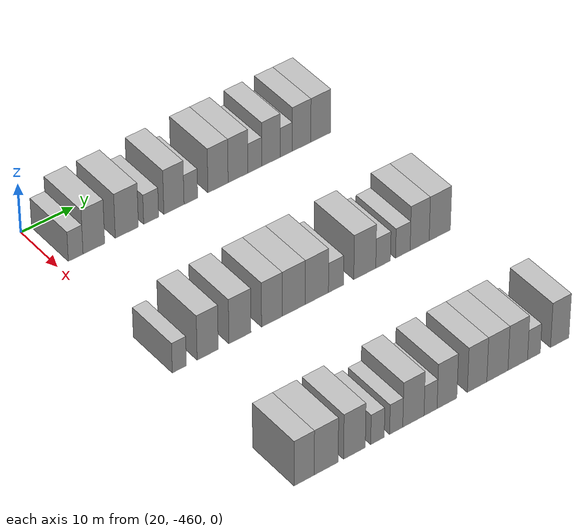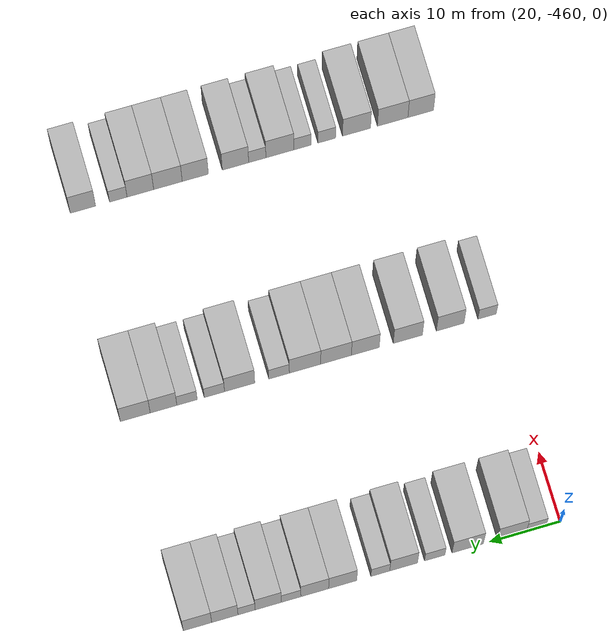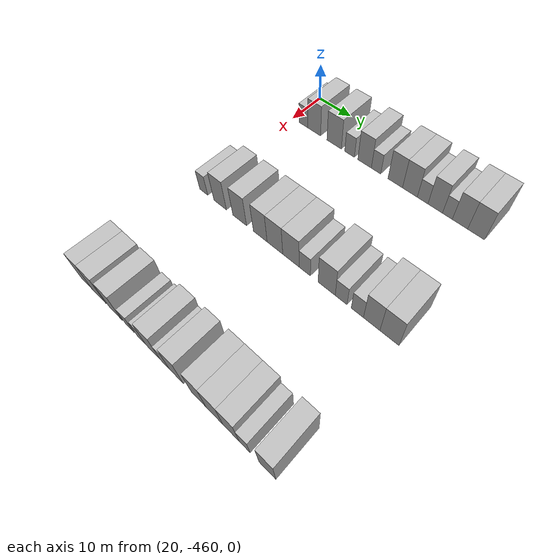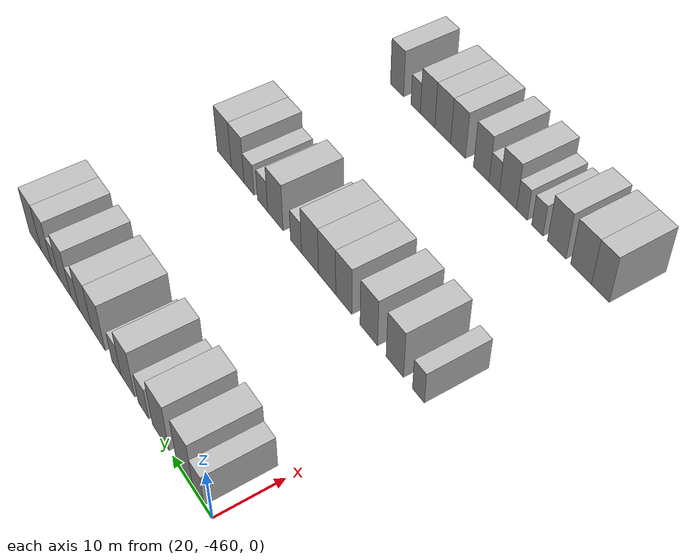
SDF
<sdf version="1.6">
 <world name="default">
  <model name="building_1">
   <static>1</static>
   <pose>25.0000 -456.6130 0 0.000000 0.000000 0.000000</pose>
   <link name="link">
    <pose>0 0 3.00 0 0 0</pose>
    <collision name="collision"><geometry><box><size>10.0000 2.7740 6.0000</size></box></geometry></collision>
    <visual name="visual">
     <cast_shadows>0</cast_shadows>
     <geometry><box><size>10.0000 2.7740 6.0000</size></box></geometry>
     <material>
      <script>
       <uri>model://HANNAS_wall/materials/scripts</uri>
       <uri>model://HANNAS_wall/materials/textures</uri>
       <name>vrc/HANNAS_wall</name>
      </script>
     </material>
    </visual>
   </link>
  </model>
  <model name="building_2">
   <static>1</static>
   <pose>25.0000 -453.1696 0 0.000000 0.000000 0.000000</pose>
   <link name="link">
    <pose>0 0 4.50 0 0 0</pose>
    <collision name="collision"><geometry><box><size>10.0000 4.1128 9.0000</size></box></geometry></collision>
    <visual name="visual">
     <cast_shadows>0</cast_shadows>
     <geometry><box><size>10.0000 4.1128 9.0000</size></box></geometry>
     <material>
      <script>
       <uri>model://HANNAS_wall/materials/scripts</uri>
       <uri>model://HANNAS_wall/materials/textures</uri>
       <name>vrc/HANNAS_wall</name>
      </script>
     </material>
    </visual>
   </link>
  </model>
  <model name="building_3">
   <static>1</static>
   <pose>25.0000 -446.9016 0 0.000000 0.000000 0.000000</pose>
   <link name="link">
    <pose>0 0 4.50 0 0 0</pose>
    <collision name="collision"><geometry><box><size>10.0000 4.4232 9.0000</size></box></geometry></collision>
    <visual name="visual">
     <cast_shadows>0</cast_shadows>
     <geometry><box><size>10.0000 4.4232 9.0000</size></box></geometry>
     <material>
      <script>
       <uri>model://HANNAS_wall/materials/scripts</uri>
       <uri>model://HANNAS_wall/materials/textures</uri>
       <name>vrc/HANNAS_wall</name>
      </script>
     </material>
    </visual>
   </link>
  </model>
  <model name="building_4">
   <static>1</static>
   <pose>25.0000 -442.2487 0 0.000000 0.000000 0.000000</pose>
   <link name="link">
    <pose>0 0 3.00 0 0 0</pose>
    <collision name="collision"><geometry><box><size>10.0000 2.8826 6.0000</size></box></geometry></collision>
    <visual name="visual">
     <cast_shadows>0</cast_shadows>
     <geometry><box><size>10.0000 2.8826 6.0000</size></box></geometry>
     <material>
      <script>
       <uri>model://HANNAS_wall/materials/scripts</uri>
       <uri>model://HANNAS_wall/materials/textures</uri>
       <name>vrc/HANNAS_wall</name>
      </script>
     </material>
    </visual>
   </link>
  </model>
  <model name="building_5">
   <static>1</static>
   <pose>25.0000 -437.8552 0 0.000000 0.000000 0.000000</pose>
   <link name="link">
    <pose>0 0 4.50 0 0 0</pose>
    <collision name="collision"><geometry><box><size>10.0000 3.9045 9.0000</size></box></geometry></collision>
    <visual name="visual">
     <cast_shadows>0</cast_shadows>
     <geometry><box><size>10.0000 3.9045 9.0000</size></box></geometry>
     <material>
      <script>
       <uri>model://HANNAS_wall/materials/scripts</uri>
       <uri>model://HANNAS_wall/materials/textures</uri>
       <name>vrc/HANNAS_wall</name>
      </script>
     </material>
    </visual>
   </link>
  </model>
  <model name="building_6">
   <static>1</static>
   <pose>25.0000 -434.5747 0 0.000000 0.000000 0.000000</pose>
   <link name="link">
    <pose>0 0 3.00 0 0 0</pose>
    <collision name="collision"><geometry><box><size>10.0000 2.6566 6.0000</size></box></geometry></collision>
    <visual name="visual">
     <cast_shadows>0</cast_shadows>
     <geometry><box><size>10.0000 2.6566 6.0000</size></box></geometry>
     <material>
      <script>
       <uri>model://HANNAS_wall/materials/scripts</uri>
       <uri>model://HANNAS_wall/materials/textures</uri>
       <name>vrc/HANNAS_wall</name>
      </script>
     </material>
    </visual>
   </link>
  </model>
  <model name="building_7">
   <static>1</static>
   <pose>25.0000 -429.2692 0 0.000000 0.000000 0.000000</pose>
   <link name="link">
    <pose>0 0 4.50 0 0 0</pose>
    <collision name="collision"><geometry><box><size>10.0000 3.9545 9.0000</size></box></geometry></collision>
    <visual name="visual">
     <cast_shadows>0</cast_shadows>
     <geometry><box><size>10.0000 3.9545 9.0000</size></box></geometry>
     <material>
      <script>
       <uri>model://HANNAS_wall/materials/scripts</uri>
       <uri>model://HANNAS_wall/materials/textures</uri>
       <name>vrc/HANNAS_wall</name>
      </script>
     </material>
    </visual>
   </link>
  </model>
  <model name="building_8">
   <static>1</static>
   <pose>25.0000 -425.3371 0 0.000000 0.000000 0.000000</pose>
   <link name="link">
    <pose>0 0 4.50 0 0 0</pose>
    <collision name="collision"><geometry><box><size>10.0000 3.9096 9.0000</size></box></geometry></collision>
    <visual name="visual">
     <cast_shadows>0</cast_shadows>
     <geometry><box><size>10.0000 3.9096 9.0000</size></box></geometry>
     <material>
      <script>
       <uri>model://HANNAS_wall/materials/scripts</uri>
       <uri>model://HANNAS_wall/materials/textures</uri>
       <name>vrc/HANNAS_wall</name>
      </script>
     </material>
    </visual>
   </link>
  </model>
  <model name="building_9">
   <static>1</static>
   <pose>25.0000 -422.0106 0 0.000000 0.000000 0.000000</pose>
   <link name="link">
    <pose>0 0 3.00 0 0 0</pose>
    <collision name="collision"><geometry><box><size>10.0000 2.7435 6.0000</size></box></geometry></collision>
    <visual name="visual">
     <cast_shadows>0</cast_shadows>
     <geometry><box><size>10.0000 2.7435 6.0000</size></box></geometry>
     <material>
      <script>
       <uri>model://HANNAS_wall/materials/scripts</uri>
       <uri>model://HANNAS_wall/materials/textures</uri>
       <name>vrc/HANNAS_wall</name>
      </script>
     </material>
    </visual>
   </link>
  </model>
  <model name="building_10">
   <static>1</static>
   <pose>25.0000 -418.7983 0 0.000000 0.000000 0.000000</pose>
   <link name="link">
    <pose>0 0 4.50 0 0 0</pose>
    <collision name="collision"><geometry><box><size>10.0000 3.6812 9.0000</size></box></geometry></collision>
    <visual name="visual">
     <cast_shadows>0</cast_shadows>
     <geometry><box><size>10.0000 3.6812 9.0000</size></box></geometry>
     <material>
      <script>
       <uri>model://HANNAS_wall/materials/scripts</uri>
       <uri>model://HANNAS_wall/materials/textures</uri>
       <name>vrc/HANNAS_wall</name>
      </script>
     </material>
    </visual>
   </link>
  </model>
  <model name="building_11">
   <static>1</static>
   <pose>25.0000 -415.7499 0 0.000000 0.000000 0.000000</pose>
   <link name="link">
    <pose>0 0 3.00 0 0 0</pose>
    <collision name="collision"><geometry><box><size>10.0000 2.4156 6.0000</size></box></geometry></collision>
    <visual name="visual">
     <cast_shadows>0</cast_shadows>
     <geometry><box><size>10.0000 2.4156 6.0000</size></box></geometry>
     <material>
      <script>
       <uri>model://HANNAS_wall/materials/scripts</uri>
       <uri>model://HANNAS_wall/materials/textures</uri>
       <name>vrc/HANNAS_wall</name>
      </script>
     </material>
    </visual>
   </link>
  </model>
  <model name="building_12">
   <static>1</static>
   <pose>25.0000 -412.6947 0 0.000000 0.000000 0.000000</pose>
   <link name="link">
    <pose>0 0 4.50 0 0 0</pose>
    <collision name="collision"><geometry><box><size>10.0000 3.6948 9.0000</size></box></geometry></collision>
    <visual name="visual">
     <cast_shadows>0</cast_shadows>
     <geometry><box><size>10.0000 3.6948 9.0000</size></box></geometry>
     <material>
      <script>
       <uri>model://HANNAS_wall/materials/scripts</uri>
       <uri>model://HANNAS_wall/materials/textures</uri>
       <name>vrc/HANNAS_wall</name>
      </script>
     </material>
    </visual>
   </link>
  </model>
  <model name="building_13">
   <static>1</static>
   <pose>25.0000 -408.8557 0 0.000000 0.000000 0.000000</pose>
   <link name="link">
    <pose>0 0 4.50 0 0 0</pose>
    <collision name="collision"><geometry><box><size>10.0000 3.9831 9.0000</size></box></geometry></collision>
    <visual name="visual">
     <cast_shadows>0</cast_shadows>
     <geometry><box><size>10.0000 3.9831 9.0000</size></box></geometry>
     <material>
      <script>
       <uri>model://HANNAS_wall/materials/scripts</uri>
       <uri>model://HANNAS_wall/materials/textures</uri>
       <name>vrc/HANNAS_wall</name>
      </script>
     </material>
    </visual>
   </link>
  </model>
  <model name="building_223">
   <static>1</static>
   <pose>55.0000 -458.6962 0 0.000000 0.000000 0.000000</pose>
   <link name="link">
    <pose>0 0 3.00 0 0 0</pose>
    <collision name="collision"><geometry><box><size>10.0000 2.6076 6.0000</size></box></geometry></collision>
    <visual name="visual">
     <cast_shadows>0</cast_shadows>
     <geometry><box><size>10.0000 2.6076 6.0000</size></box></geometry>
     <material>
      <script>
       <uri>model://HANNAS_wall/materials/scripts</uri>
       <uri>model://HANNAS_wall/materials/textures</uri>
       <name>vrc/HANNAS_wall</name>
      </script>
     </material>
    </visual>
   </link>
  </model>
  <model name="building_224">
   <static>1</static>
   <pose>55.0000 -453.4210 0 0.000000 0.000000 0.000000</pose>
   <link name="link">
    <pose>0 0 4.50 0 0 0</pose>
    <collision name="collision"><geometry><box><size>10.0000 3.9427 9.0000</size></box></geometry></collision>
    <visual name="visual">
     <cast_shadows>0</cast_shadows>
     <geometry><box><size>10.0000 3.9427 9.0000</size></box></geometry>
     <material>
      <script>
       <uri>model://HANNAS_wall/materials/scripts</uri>
       <uri>model://HANNAS_wall/materials/textures</uri>
       <name>vrc/HANNAS_wall</name>
      </script>
     </material>
    </visual>
   </link>
  </model>
  <model name="building_225">
   <static>1</static>
   <pose>55.0000 -447.3735 0 0.000000 0.000000 0.000000</pose>
   <link name="link">
    <pose>0 0 4.50 0 0 0</pose>
    <collision name="collision"><geometry><box><size>10.0000 4.1523 9.0000</size></box></geometry></collision>
    <visual name="visual">
     <cast_shadows>0</cast_shadows>
     <geometry><box><size>10.0000 4.1523 9.0000</size></box></geometry>
     <material>
      <script>
       <uri>model://HANNAS_wall/materials/scripts</uri>
       <uri>model://HANNAS_wall/materials/textures</uri>
       <name>vrc/HANNAS_wall</name>
      </script>
     </material>
    </visual>
   </link>
  </model>
  <model name="building_226">
   <static>1</static>
   <pose>55.0000 -441.3153 0 0.000000 0.000000 0.000000</pose>
   <link name="link">
    <pose>0 0 4.50 0 0 0</pose>
    <collision name="collision"><geometry><box><size>10.0000 3.9642 9.0000</size></box></geometry></collision>
    <visual name="visual">
     <cast_shadows>0</cast_shadows>
     <geometry><box><size>10.0000 3.9642 9.0000</size></box></geometry>
     <material>
      <script>
       <uri>model://HANNAS_wall/materials/scripts</uri>
       <uri>model://HANNAS_wall/materials/textures</uri>
       <name>vrc/HANNAS_wall</name>
      </script>
     </material>
    </visual>
   </link>
  </model>
  <model name="building_227">
   <static>1</static>
   <pose>55.0000 -437.1441 0 0.000000 0.000000 0.000000</pose>
   <link name="link">
    <pose>0 0 4.50 0 0 0</pose>
    <collision name="collision"><geometry><box><size>10.0000 4.3783 9.0000</size></box></geometry></collision>
    <visual name="visual">
     <cast_shadows>0</cast_shadows>
     <geometry><box><size>10.0000 4.3783 9.0000</size></box></geometry>
     <material>
      <script>
       <uri>model://HANNAS_wall/materials/scripts</uri>
       <uri>model://HANNAS_wall/materials/textures</uri>
       <name>vrc/HANNAS_wall</name>
      </script>
     </material>
    </visual>
   </link>
  </model>
  <model name="building_228">
   <static>1</static>
   <pose>55.0000 -432.7282 0 0.000000 0.000000 0.000000</pose>
   <link name="link">
    <pose>0 0 4.50 0 0 0</pose>
    <collision name="collision"><geometry><box><size>10.0000 4.4536 9.0000</size></box></geometry></collision>
    <visual name="visual">
     <cast_shadows>0</cast_shadows>
     <geometry><box><size>10.0000 4.4536 9.0000</size></box></geometry>
     <material>
      <script>
       <uri>model://HANNAS_wall/materials/scripts</uri>
       <uri>model://HANNAS_wall/materials/textures</uri>
       <name>vrc/HANNAS_wall</name>
      </script>
     </material>
    </visual>
   </link>
  </model>
  <model name="building_229">
   <static>1</static>
   <pose>55.0000 -429.0432 0 0.000000 0.000000 0.000000</pose>
   <link name="link">
    <pose>0 0 3.00 0 0 0</pose>
    <collision name="collision"><geometry><box><size>10.0000 2.9164 6.0000</size></box></geometry></collision>
    <visual name="visual">
     <cast_shadows>0</cast_shadows>
     <geometry><box><size>10.0000 2.9164 6.0000</size></box></geometry>
     <material>
      <script>
       <uri>model://HANNAS_wall/materials/scripts</uri>
       <uri>model://HANNAS_wall/materials/textures</uri>
       <name>vrc/HANNAS_wall</name>
      </script>
     </material>
    </visual>
   </link>
  </model>
  <model name="building_230">
   <static>1</static>
   <pose>55.0000 -423.4375 0 0.000000 0.000000 0.000000</pose>
   <link name="link">
    <pose>0 0 4.50 0 0 0</pose>
    <collision name="collision"><geometry><box><size>10.0000 4.2949 9.0000</size></box></geometry></collision>
    <visual name="visual">
     <cast_shadows>0</cast_shadows>
     <geometry><box><size>10.0000 4.2949 9.0000</size></box></geometry>
     <material>
      <script>
       <uri>model://HANNAS_wall/materials/scripts</uri>
       <uri>model://HANNAS_wall/materials/textures</uri>
       <name>vrc/HANNAS_wall</name>
      </script>
     </material>
    </visual>
   </link>
  </model>
  <model name="building_231">
   <static>1</static>
   <pose>55.0000 -419.8538 0 0.000000 0.000000 0.000000</pose>
   <link name="link">
    <pose>0 0 3.00 0 0 0</pose>
    <collision name="collision"><geometry><box><size>10.0000 2.8726 6.0000</size></box></geometry></collision>
    <visual name="visual">
     <cast_shadows>0</cast_shadows>
     <geometry><box><size>10.0000 2.8726 6.0000</size></box></geometry>
     <material>
      <script>
       <uri>model://HANNAS_wall/materials/scripts</uri>
       <uri>model://HANNAS_wall/materials/textures</uri>
       <name>vrc/HANNAS_wall</name>
      </script>
     </material>
    </visual>
   </link>
  </model>
  <model name="building_232">
   <static>1</static>
   <pose>55.0000 -415.9744 0 0.000000 0.000000 0.000000</pose>
   <link name="link">
    <pose>0 0 3.00 0 0 0</pose>
    <collision name="collision"><geometry><box><size>10.0000 2.8861 6.0000</size></box></geometry></collision>
    <visual name="visual">
     <cast_shadows>0</cast_shadows>
     <geometry><box><size>10.0000 2.8861 6.0000</size></box></geometry>
     <material>
      <script>
       <uri>model://HANNAS_wall/materials/scripts</uri>
       <uri>model://HANNAS_wall/materials/textures</uri>
       <name>vrc/HANNAS_wall</name>
      </script>
     </material>
    </visual>
   </link>
  </model>
  <model name="building_233">
   <static>1</static>
   <pose>55.0000 -412.6437 0 0.000000 0.000000 0.000000</pose>
   <link name="link">
    <pose>0 0 4.50 0 0 0</pose>
    <collision name="collision"><geometry><box><size>10.0000 3.7753 9.0000</size></box></geometry></collision>
    <visual name="visual">
     <cast_shadows>0</cast_shadows>
     <geometry><box><size>10.0000 3.7753 9.0000</size></box></geometry>
     <material>
      <script>
       <uri>model://HANNAS_wall/materials/scripts</uri>
       <uri>model://HANNAS_wall/materials/textures</uri>
       <name>vrc/HANNAS_wall</name>
      </script>
     </material>
    </visual>
   </link>
  </model>
  <model name="building_234">
   <static>1</static>
   <pose>55.0000 -408.6398 0 0.000000 0.000000 0.000000</pose>
   <link name="link">
    <pose>0 0 4.50 0 0 0</pose>
    <collision name="collision"><geometry><box><size>10.0000 4.2324 9.0000</size></box></geometry></collision>
    <visual name="visual">
     <cast_shadows>0</cast_shadows>
     <geometry><box><size>10.0000 4.2324 9.0000</size></box></geometry>
     <material>
      <script>
       <uri>model://HANNAS_wall/materials/scripts</uri>
       <uri>model://HANNAS_wall/materials/textures</uri>
       <name>vrc/HANNAS_wall</name>
      </script>
     </material>
    </visual>
   </link>
  </model>
  <model name="building_438">
   <static>1</static>
   <pose>85.0000 -458.1568 0 0.000000 0.000000 0.000000</pose>
   <link name="link">
    <pose>0 0 4.50 0 0 0</pose>
    <collision name="collision"><geometry><box><size>10.0000 3.6864 9.0000</size></box></geometry></collision>
    <visual name="visual">
     <cast_shadows>0</cast_shadows>
     <geometry><box><size>10.0000 3.6864 9.0000</size></box></geometry>
     <material>
      <script>
       <uri>model://HANNAS_wall/materials/scripts</uri>
       <uri>model://HANNAS_wall/materials/textures</uri>
       <name>vrc/HANNAS_wall</name>
      </script>
     </material>
    </visual>
   </link>
  </model>
  <model name="building_439">
   <static>1</static>
   <pose>85.0000 -454.1171 0 0.000000 0.000000 0.000000</pose>
   <link name="link">
    <pose>0 0 4.50 0 0 0</pose>
    <collision name="collision"><geometry><box><size>10.0000 4.3930 9.0000</size></box></geometry></collision>
    <visual name="visual">
     <cast_shadows>0</cast_shadows>
     <geometry><box><size>10.0000 4.3930 9.0000</size></box></geometry>
     <material>
      <script>
       <uri>model://HANNAS_wall/materials/scripts</uri>
       <uri>model://HANNAS_wall/materials/textures</uri>
       <name>vrc/HANNAS_wall</name>
      </script>
     </material>
    </visual>
   </link>
  </model>
  <model name="building_440">
   <static>1</static>
   <pose>85.0000 -448.9026 0 0.000000 0.000000 0.000000</pose>
   <link name="link">
    <pose>0 0 4.50 0 0 0</pose>
    <collision name="collision"><geometry><box><size>10.0000 4.0360 9.0000</size></box></geometry></collision>
    <visual name="visual">
     <cast_shadows>0</cast_shadows>
     <geometry><box><size>10.0000 4.0360 9.0000</size></box></geometry>
     <material>
      <script>
       <uri>model://HANNAS_wall/materials/scripts</uri>
       <uri>model://HANNAS_wall/materials/textures</uri>
       <name>vrc/HANNAS_wall</name>
      </script>
     </material>
    </visual>
   </link>
  </model>
  <model name="building_441">
   <static>1</static>
   <pose>85.0000 -444.6174 0 0.000000 0.000000 0.000000</pose>
   <link name="link">
    <pose>0 0 3.00 0 0 0</pose>
    <collision name="collision"><geometry><box><size>10.0000 2.5345 6.0000</size></box></geometry></collision>
    <visual name="visual">
     <cast_shadows>0</cast_shadows>
     <geometry><box><size>10.0000 2.5345 6.0000</size></box></geometry>
     <material>
      <script>
       <uri>model://HANNAS_wall/materials/scripts</uri>
       <uri>model://HANNAS_wall/materials/textures</uri>
       <name>vrc/HANNAS_wall</name>
      </script>
     </material>
    </visual>
   </link>
  </model>
  <model name="building_442">
   <static>1</static>
   <pose>85.0000 -441.1143 0 0.000000 0.000000 0.000000</pose>
   <link name="link">
    <pose>0 0 3.00 0 0 0</pose>
    <collision name="collision"><geometry><box><size>10.0000 2.4717 6.0000</size></box></geometry></collision>
    <visual name="visual">
     <cast_shadows>0</cast_shadows>
     <geometry><box><size>10.0000 2.4717 6.0000</size></box></geometry>
     <material>
      <script>
       <uri>model://HANNAS_wall/materials/scripts</uri>
       <uri>model://HANNAS_wall/materials/textures</uri>
       <name>vrc/HANNAS_wall</name>
      </script>
     </material>
    </visual>
   </link>
  </model>
  <model name="building_443">
   <static>1</static>
   <pose>85.0000 -437.8749 0 0.000000 0.000000 0.000000</pose>
   <link name="link">
    <pose>0 0 4.50 0 0 0</pose>
    <collision name="collision"><geometry><box><size>10.0000 4.0071 9.0000</size></box></geometry></collision>
    <visual name="visual">
     <cast_shadows>0</cast_shadows>
     <geometry><box><size>10.0000 4.0071 9.0000</size></box></geometry>
     <material>
      <script>
       <uri>model://HANNAS_wall/materials/scripts</uri>
       <uri>model://HANNAS_wall/materials/textures</uri>
       <name>vrc/HANNAS_wall</name>
      </script>
     </material>
    </visual>
   </link>
  </model>
  <model name="building_444">
   <static>1</static>
   <pose>85.0000 -434.6320 0 0.000000 0.000000 0.000000</pose>
   <link name="link">
    <pose>0 0 3.00 0 0 0</pose>
    <collision name="collision"><geometry><box><size>10.0000 2.4787 6.0000</size></box></geometry></collision>
    <visual name="visual">
     <cast_shadows>0</cast_shadows>
     <geometry><box><size>10.0000 2.4787 6.0000</size></box></geometry>
     <material>
      <script>
       <uri>model://HANNAS_wall/materials/scripts</uri>
       <uri>model://HANNAS_wall/materials/textures</uri>
       <name>vrc/HANNAS_wall</name>
      </script>
     </material>
    </visual>
   </link>
  </model>
  <model name="building_445">
   <static>1</static>
   <pose>85.0000 -431.5022 0 0.000000 0.000000 0.000000</pose>
   <link name="link">
    <pose>0 0 4.50 0 0 0</pose>
    <collision name="collision"><geometry><box><size>10.0000 3.7809 9.0000</size></box></geometry></collision>
    <visual name="visual">
     <cast_shadows>0</cast_shadows>
     <geometry><box><size>10.0000 3.7809 9.0000</size></box></geometry>
     <material>
      <script>
       <uri>model://HANNAS_wall/materials/scripts</uri>
       <uri>model://HANNAS_wall/materials/textures</uri>
       <name>vrc/HANNAS_wall</name>
      </script>
     </material>
    </visual>
   </link>
  </model>
  <model name="building_446">
   <static>1</static>
   <pose>85.0000 -425.7390 0 0.000000 0.000000 0.000000</pose>
   <link name="link">
    <pose>0 0 4.50 0 0 0</pose>
    <collision name="collision"><geometry><box><size>10.0000 3.7456 9.0000</size></box></geometry></collision>
    <visual name="visual">
     <cast_shadows>0</cast_shadows>
     <geometry><box><size>10.0000 3.7456 9.0000</size></box></geometry>
     <material>
      <script>
       <uri>model://HANNAS_wall/materials/scripts</uri>
       <uri>model://HANNAS_wall/materials/textures</uri>
       <name>vrc/HANNAS_wall</name>
      </script>
     </material>
    </visual>
   </link>
  </model>
  <model name="building_447">
   <static>1</static>
   <pose>85.0000 -421.8213 0 0.000000 0.000000 0.000000</pose>
   <link name="link">
    <pose>0 0 4.50 0 0 0</pose>
    <collision name="collision"><geometry><box><size>10.0000 4.0898 9.0000</size></box></geometry></collision>
    <visual name="visual">
     <cast_shadows>0</cast_shadows>
     <geometry><box><size>10.0000 4.0898 9.0000</size></box></geometry>
     <material>
      <script>
       <uri>model://HANNAS_wall/materials/scripts</uri>
       <uri>model://HANNAS_wall/materials/textures</uri>
       <name>vrc/HANNAS_wall</name>
      </script>
     </material>
    </visual>
   </link>
  </model>
  <model name="building_448">
   <static>1</static>
   <pose>85.0000 -417.8742 0 0.000000 0.000000 0.000000</pose>
   <link name="link">
    <pose>0 0 4.50 0 0 0</pose>
    <collision name="collision"><geometry><box><size>10.0000 3.8044 9.0000</size></box></geometry></collision>
    <visual name="visual">
     <cast_shadows>0</cast_shadows>
     <geometry><box><size>10.0000 3.8044 9.0000</size></box></geometry>
     <material>
      <script>
       <uri>model://HANNAS_wall/materials/scripts</uri>
       <uri>model://HANNAS_wall/materials/textures</uri>
       <name>vrc/HANNAS_wall</name>
      </script>
     </material>
    </visual>
   </link>
  </model>
  <model name="building_449">
   <static>1</static>
   <pose>85.0000 -414.7198 0 0.000000 0.000000 0.000000</pose>
   <link name="link">
    <pose>0 0 3.00 0 0 0</pose>
    <collision name="collision"><geometry><box><size>10.0000 2.5045 6.0000</size></box></geometry></collision>
    <visual name="visual">
     <cast_shadows>0</cast_shadows>
     <geometry><box><size>10.0000 2.5045 6.0000</size></box></geometry>
     <material>
      <script>
       <uri>model://HANNAS_wall/materials/scripts</uri>
       <uri>model://HANNAS_wall/materials/textures</uri>
       <name>vrc/HANNAS_wall</name>
      </script>
     </material>
    </visual>
   </link>
  </model>
  <model name="building_450">
   <static>1</static>
   <pose>85.0000 -409.6568 0 0.000000 0.000000 0.000000</pose>
   <link name="link">
    <pose>0 0 4.50 0 0 0</pose>
    <collision name="collision"><geometry><box><size>10.0000 3.6214 9.0000</size></box></geometry></collision>
    <visual name="visual">
     <cast_shadows>0</cast_shadows>
     <geometry><box><size>10.0000 3.6214 9.0000</size></box></geometry>
     <material>
      <script>
       <uri>model://HANNAS_wall/materials/scripts</uri>
       <uri>model://HANNAS_wall/materials/textures</uri>
       <name>vrc/HANNAS_wall</name>
      </script>
     </material>
    </visual>
   </link>
  </model>
 </world>
</sdf>
